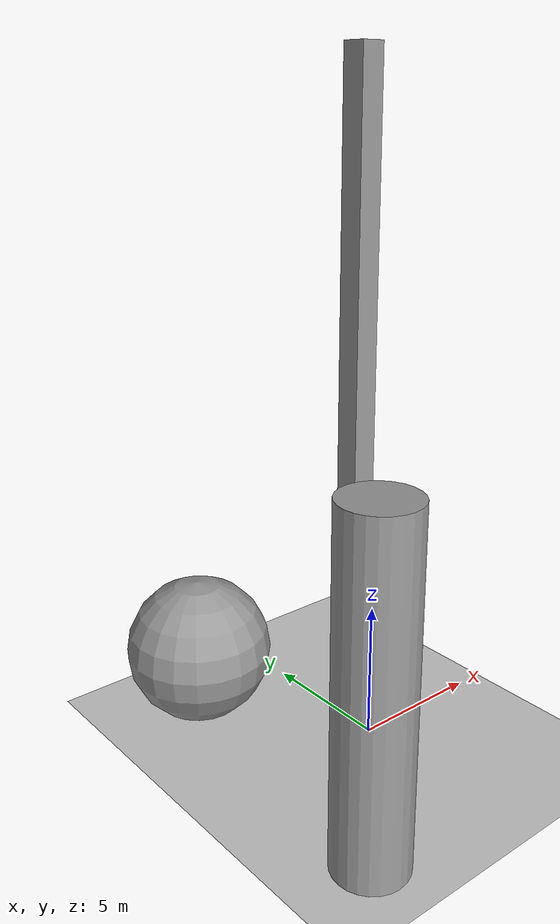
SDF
<sdf version="1.6">
 <world name="default">
  <model name="ground_plane">
   <static>1</static>
   <link name="link">
    <collision name="collision">
     <geometry><plane><normal>0 0 1</normal><size>100 100</size></plane></geometry>
     <surface><friction><ode><mu>100</mu><mu2>50</mu2></ode></friction></surface>
    </collision>
    <visual name="visual">
     <cast_shadows>0</cast_shadows>
     <geometry><plane><normal>0 0 1</normal><size>100 100</size></plane></geometry>
     <material>
      <script><uri>file://media/materials/scripts/gazebo.material</uri><name>Gazebo/Grey</name></script>
     </material>
    </visual>
   </link>
  </model>
  <light name="sun" type="directional">
   <pose>0 0 10 0 -0 0</pose>
   <diffuse>0.8 0.8 0.8 1</diffuse>
   <specular>0.2 0.2 0.2 1</specular>
   <attenuation>
    <range>1000</range>
    <constant>0.9</constant>
    <linear>0.01</linear>
    <quadratic>0.001</quadratic>
   </attenuation>
   <direction>-0.5 0.1 -0.9</direction>
  </light>
  <plugin name="ros_interface_plugin" filename="librotors_gazebo_ros_interface_plugin.so"/>
  <spherical_coordinates>
   <surface_model>EARTH_WGS84</surface_model>
   <latitude_deg>47.3667</latitude_deg>
   <longitude_deg>8.55</longitude_deg>
   <elevation>500</elevation>
   <heading_deg>0</heading_deg>
  </spherical_coordinates>
  <physics name="default_physics" default="0" type="ode">
   <ode>
    <solver>
     <type>quick</type>
     <iters>1000</iters>
     <sor>1.3</sor>
     <use_dynamic_moi_rescaling>0</use_dynamic_moi_rescaling>
    </solver>
    <constraints>
     <cfm>0</cfm>
     <erp>0.2</erp>
     <contact_max_correcting_vel>100</contact_max_correcting_vel>
     <contact_surface_layer>0.001</contact_surface_layer>
    </constraints>
   </ode>
   <max_step_size>0.01</max_step_size>
   <real_time_factor>1</real_time_factor>
   <real_time_update_rate>100</real_time_update_rate>
  </physics>
  <gravity>0 0 -9.8</gravity>
  <magnetic_field>6e-06 2.3e-05 -4.2e-05</magnetic_field>
  <atmosphere type="adiabatic"/>
  <scene><ambient>0.4 0.4 0.4 1</ambient><background>0.7 0.7 0.7 1</background><shadows>1</shadows></scene>
  <model name="unit_box">
   <pose>3.44727 4.67736 12.0604 1e-06 -0 0.01113</pose>
   <link name="link">
    <inertial>
     <mass>1</mass>
     <inertia>
      <ixx>0.166667</ixx>
      <ixy>0</ixy>
      <ixz>0</ixz>
      <iyy>0.166667</iyy>
      <iyz>0</iyz>
      <izz>0.166667</izz>
     </inertia>
    </inertial>
    <collision name="collision"><geometry><box><size>1 1 24.1207</size></box></geometry></collision>
    <visual name="visual">
     <geometry><box><size>1 1 24.1207</size></box></geometry>
     <material>
      <script><name>Gazebo/Grey</name><uri>file://media/materials/scripts/gazebo.material</uri></script>
     </material>
    </visual>
   </link>
  </model>
  <model name="unit_cylinder">
   <pose>-4.73482 -5.03215 6.02461 0 0 -6.1e-05</pose>
   <link name="link">
    <inertial>
     <mass>1</mass>
     <inertia><ixx>0.145833</ixx><ixy>0</ixy><ixz>0</ixz><iyy>0.145833</iyy><iyz>0</iyz><izz>0.125</izz></inertia>
    </inertial>
    <collision name="collision">
     <geometry><cylinder><radius>1.2977</radius><length>12.051</length></cylinder></geometry>
    </collision>
    <visual name="visual">
     <geometry><cylinder><radius>1.2977</radius><length>12.051</length></cylinder></geometry>
     <material>
      <script><name>Gazebo/Grey</name><uri>file://media/materials/scripts/gazebo.material</uri></script>
     </material>
    </visual>
   </link>
  </model>
  <model name="unit_sphere">
   <pose>-3.9643 5.12212 2.66538 0 -0 0</pose>
   <link name="link">
    <inertial>
     <mass>1</mass>
     <inertia><ixx>0.1</ixx><ixy>0</ixy><ixz>0</ixz><iyy>0.1</iyy><iyz>0</iyz><izz>0.1</izz></inertia>
    </inertial>
    <collision name="collision"><geometry><sphere><radius>2.66538</radius></sphere></geometry></collision>
    <visual name="visual">
     <geometry><sphere><radius>2.66538</radius></sphere></geometry>
     <material>
      <script><name>Gazebo/Grey</name><uri>file://media/materials/scripts/gazebo.material</uri></script>
     </material>
    </visual>
   </link>
  </model>
 </world>
</sdf>
